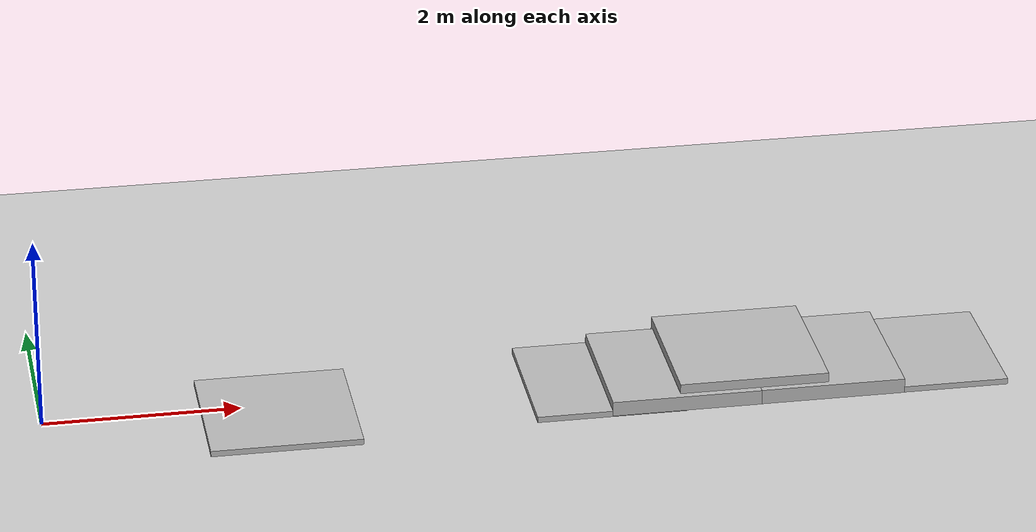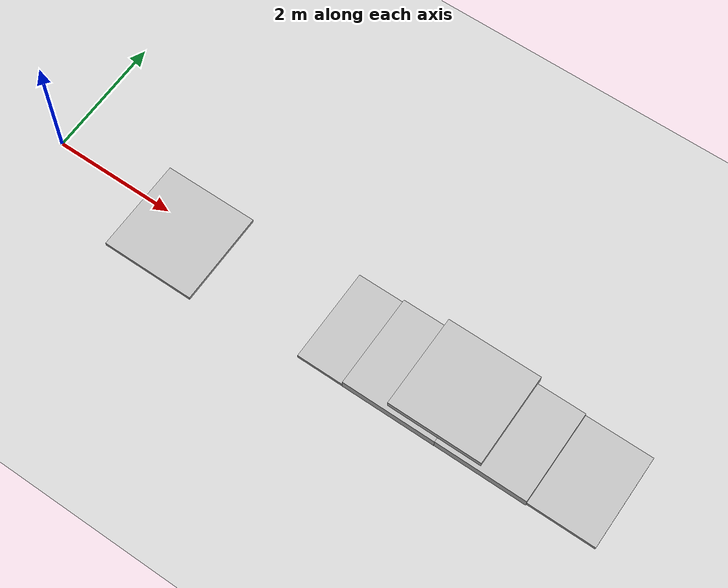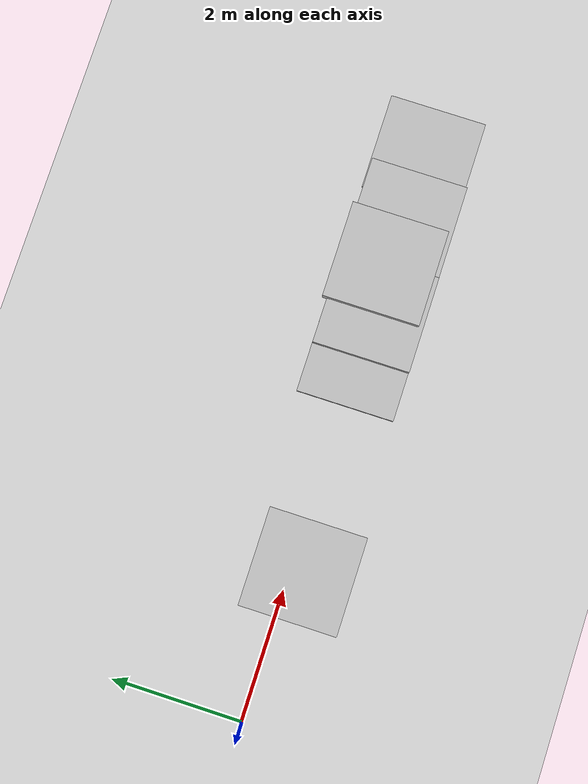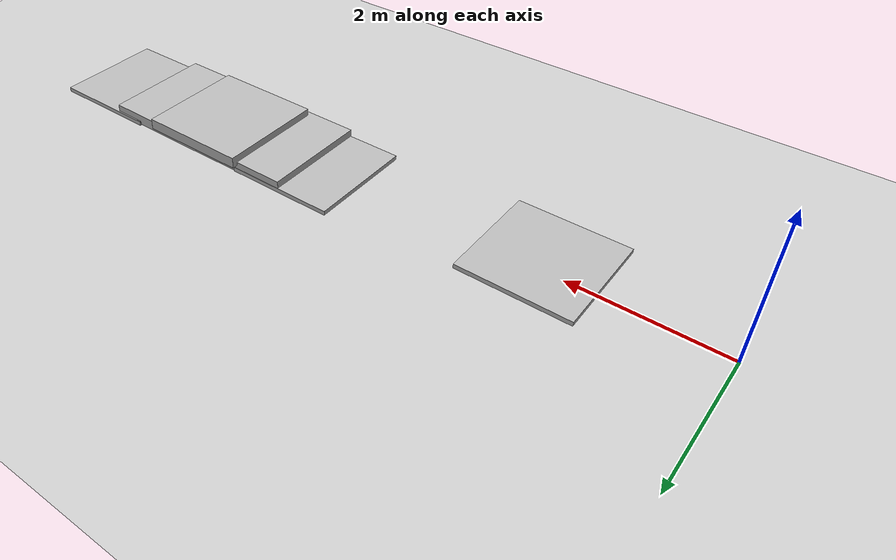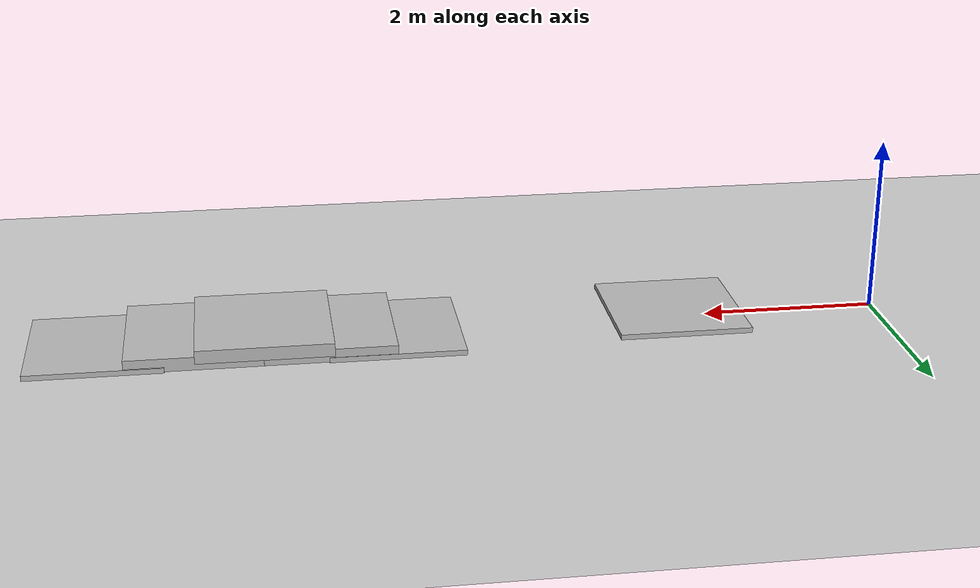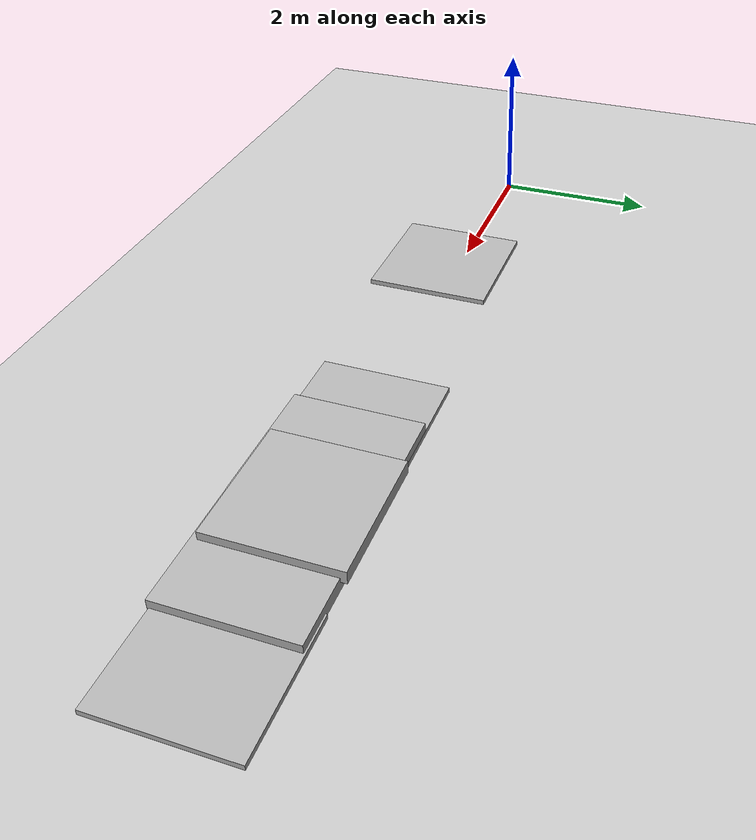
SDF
<sdf version="1.7">
 <world name="default">
  <light name="sun" type="directional">
   <pose>0 0 10 0 -0 0</pose>
   <diffuse>0.8 0.8 0.8 1</diffuse>
   <specular>0.2 0.2 0.2 1</specular>
   <attenuation>
    <range>1000</range>
    <constant>0.9</constant>
    <linear>0.01</linear>
    <quadratic>0.001</quadratic>
   </attenuation>
   <direction>-0.5 0.1 -0.9</direction>
   <spot><inner_angle>0</inner_angle><outer_angle>0</outer_angle><falloff>0</falloff></spot>
  </light>
  <model name="ground_plane">
   <static>1</static>
   <link name="link">
    <collision name="collision">
     <geometry><plane><normal>0 0 1</normal><size>100 100</size></plane></geometry>
     <surface><friction><ode><mu>100</mu><mu2>50</mu2></ode></friction></surface>
    </collision>
    <visual name="visual">
     <cast_shadows>0</cast_shadows>
     <geometry><plane><normal>0 0 1</normal><size>100 100</size></plane></geometry>
     <material>
      <script><uri>file://media/materials/scripts/gazebo.material</uri><name>Gazebo/Grey</name></script>
     </material>
    </visual>
   </link>
  </model>
  <gravity>0 0 -9.8</gravity>
  <magnetic_field>6e-06 2.3e-05 -4.2e-05</magnetic_field>
  <atmosphere type="adiabatic"/>
  <physics type="ode">
   <max_step_size>0.001</max_step_size>
   <real_time_factor>1</real_time_factor>
   <real_time_update_rate>1000</real_time_update_rate>
  </physics>
  <scene><ambient>0.4 0.4 0.4 1</ambient><background>0.7 0.7 0.7 1</background><shadows>1</shadows></scene>
  <spherical_coordinates>
   <surface_model>EARTH_WGS84</surface_model>
   <latitude_deg>0</latitude_deg>
   <longitude_deg>0</longitude_deg>
   <elevation>0</elevation>
   <heading_deg>0</heading_deg>
  </spherical_coordinates>
  <model name="walkway_metal_straight">
   <static>1</static>
   <link name="link">
    <collision name="collision">
     <pose>0 0.762 0.076075 0 -0 0</pose>
     <geometry><box><size>1.524 1.524 0.15215</size></box></geometry>
    </collision>
    <visual name="visual">
     <geometry>
      <mesh><scale>0.001 0.001 0.001</scale><uri>model://walkway_metal_straight/meshes/mesh.obj</uri></mesh>
     </geometry>
    </visual>
   </link>
   <pose>2.35151 -0.947983 -0.1 0 -0 0</pose>
  </model>
  <model name="walkway_metal_straight_0">
   <static>1</static>
   <link name="link">
    <collision name="collision">
     <pose>0 0.762 0.076075 0 -0 0</pose>
     <geometry><box><size>1.524 1.524 0.15215</size></box></geometry>
    </collision>
    <visual name="visual">
     <geometry>
      <mesh><scale>0.001 0.001 0.001</scale><uri>model://walkway_metal_straight/meshes/mesh.obj</uri></mesh>
     </geometry>
    </visual>
   </link>
   <pose>5.65038 -0.787993 -0.1 0 -0 0</pose>
  </model>
  <model name="walkway_metal_90">
   <static>1</static>
   <link name="link">
    <collision name="collision">
     <pose>0 0.762 0.076075 0 -0 0</pose>
     <geometry><box><size>1.524 1.524 0.15215</size></box></geometry>
    </collision>
    <visual name="visual">
     <geometry>
      <mesh><scale>0.001 0.001 0.001</scale><uri>model://walkway_metal_90/meshes/mesh.obj</uri></mesh>
     </geometry>
    </visual>
   </link>
   <pose>6.41566 -0.791753 0 0 -0 0</pose>
  </model>
  <model name="walkway_metal_90_0">
   <static>1</static>
   <link name="link">
    <collision name="collision">
     <pose>0 0.762 0.076075 0 -0 0</pose>
     <geometry><box><size>1.524 1.524 0.15215</size></box></geometry>
    </collision>
    <visual name="visual">
     <geometry>
      <mesh><scale>0.001 0.001 0.001</scale><uri>model://walkway_metal_90/meshes/mesh.obj</uri></mesh>
     </geometry>
    </visual>
   </link>
   <pose>7.11787 -0.718449 0.1 0 -0 0</pose>
  </model>
  <model name="walkway_metal_90_1">
   <static>1</static>
   <link name="link">
    <collision name="collision">
     <pose>0 0.762 0.076075 0 -0 0</pose>
     <geometry><box><size>1.524 1.524 0.15215</size></box></geometry>
    </collision>
    <visual name="visual">
     <geometry>
      <mesh><scale>0.001 0.001 0.001</scale><uri>model://walkway_metal_90/meshes/mesh.obj</uri></mesh>
     </geometry>
    </visual>
   </link>
   <pose>7.89137 -0.788859 0 0 -0 0</pose>
  </model>
  <model name="walkway_metal_90_2">
   <static>1</static>
   <link name="link">
    <collision name="collision">
     <pose>0 0.762 0.076075 0 -0 0</pose>
     <geometry><box><size>1.524 1.524 0.15215</size></box></geometry>
    </collision>
    <visual name="visual">
     <geometry>
      <mesh><scale>0.001 0.001 0.001</scale><uri>model://walkway_metal_90/meshes/mesh.obj</uri></mesh>
     </geometry>
    </visual>
   </link>
   <pose>8.97111 -0.769998 -0.1 0 -0 0</pose>
  </model>
 </world>
</sdf>
